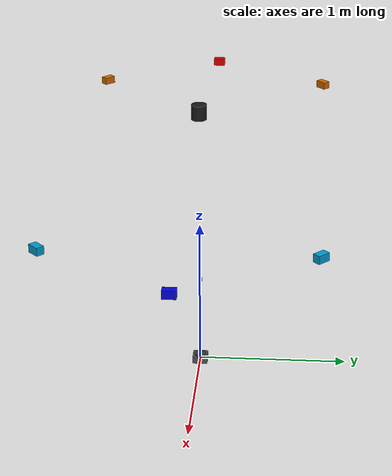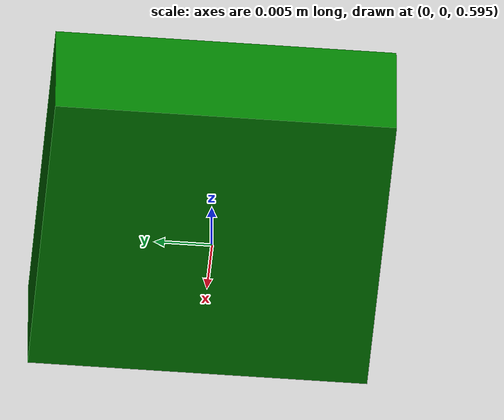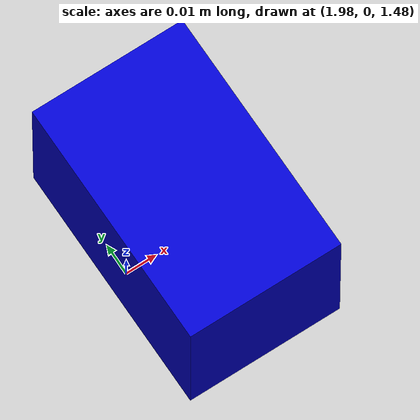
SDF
<?xml version="1.0"?>
<sdf version="1.9">
  <model name="occworld_sensor_rig">
    <static>false</static>

    <!-- BASE LINK - Attachment point for all sensors                       -->
    <link name="sensor_base">
      <inertial>
        <mass>0.5</mass>
        <inertia>
          <ixx>0.01</ixx>
          <iyy>0.01</iyy>
          <izz>0.01</izz>
          <ixy>0</ixy>
          <ixz>0</ixz>
          <iyz>0</iyz>
        </inertia>
      </inertial>
      <visual name="sensor_base_visual">
        <geometry>
          <box><size>0.1 0.1 0.05</size></box>
        </geometry>
        <material>
          <ambient>0.3 0.3 0.3 1</ambient>
        </material>
      </visual>
    </link>

    <!-- CAMERA ARRAY - 6 Surround-View Cameras for BEVFusion               -->
    <!-- Resolution: 1600x900, FOV: 70deg, Rate: 10Hz                       -->
    <!-- Intrinsics: fx=fy=1142.5, cx=800, cy=450                          -->

    <!-- FRONT CAMERA (CAM_FRONT) - 0 degrees yaw -->
    <link name="camera_front_link">
      <pose relative_to="sensor_base">2.0 0 1.5 0 0 0</pose>
      <inertial>
        <mass>0.05</mass>
        <inertia>
          <ixx>0.0001</ixx><iyy>0.0001</iyy><izz>0.0001</izz>
        </inertia>
      </inertial>
      <visual name="camera_visual">
        <geometry><box><size>0.05 0.08 0.05</size></box></geometry>
        <material><ambient>0 0 0.8 1</ambient></material>
      </visual>
      <sensor name="camera_front" type="camera">
        <always_on>1</always_on>
        <update_rate>10</update_rate>
        <visualize>true</visualize>
        <topic>camera/front/image</topic>
        <gz_frame_id>camera_front_link</gz_frame_id>
        <camera>
          <horizontal_fov>1.2217</horizontal_fov>  <!-- 70 degrees -->
          <image>
            <width>1600</width>
            <height>900</height>
            <format>R8G8B8</format>
          </image>
          <clip>
            <near>0.1</near>
            <far>300</far>
          </clip>
          <lens>
            <intrinsics>
              <fx>1142.5</fx>
              <fy>1142.5</fy>
              <cx>800</cx>
              <cy>450</cy>
              <s>0</s>
            </intrinsics>
          </lens>
          <distortion>
            <k1>0.0</k1>
            <k2>0.0</k2>
            <k3>0.0</k3>
            <p1>0.0</p1>
            <p2>0.0</p2>
          </distortion>
          <noise>
            <type>gaussian</type>
            <mean>0</mean>
            <stddev>0.007</stddev>
          </noise>
        </camera>
      </sensor>
    </link>
    <joint name="camera_front_joint" type="fixed">
      <parent>sensor_base</parent>
      <child>camera_front_link</child>
    </joint>

    <!-- FRONT-LEFT CAMERA (CAM_FRONT_LEFT) - +45 degrees yaw (0.7854 rad) -->
    <link name="camera_front_left_link">
      <pose relative_to="sensor_base">1.5 0.8 1.5 0 0 0.7854</pose>
      <inertial>
        <mass>0.05</mass>
        <inertia>
          <ixx>0.0001</ixx><iyy>0.0001</iyy><izz>0.0001</izz>
        </inertia>
      </inertial>
      <visual name="camera_visual">
        <geometry><box><size>0.05 0.08 0.05</size></box></geometry>
        <material><ambient>0 0.6 0.8 1</ambient></material>
      </visual>
      <sensor name="camera_front_left" type="camera">
        <always_on>1</always_on>
        <update_rate>10</update_rate>
        <visualize>false</visualize>
        <topic>camera/front_left/image</topic>
        <gz_frame_id>camera_front_left_link</gz_frame_id>
        <camera>
          <horizontal_fov>1.2217</horizontal_fov>
          <image>
            <width>1600</width>
            <height>900</height>
            <format>R8G8B8</format>
          </image>
          <clip>
            <near>0.1</near>
            <far>300</far>
          </clip>
          <lens>
            <intrinsics>
              <fx>1142.5</fx>
              <fy>1142.5</fy>
              <cx>800</cx>
              <cy>450</cy>
              <s>0</s>
            </intrinsics>
          </lens>
          <noise>
            <type>gaussian</type>
            <mean>0</mean>
            <stddev>0.007</stddev>
          </noise>
        </camera>
      </sensor>
    </link>
    <joint name="camera_front_left_joint" type="fixed">
      <parent>sensor_base</parent>
      <child>camera_front_left_link</child>
    </joint>

    <!-- FRONT-RIGHT CAMERA (CAM_FRONT_RIGHT) - -45 degrees yaw (-0.7854 rad) -->
    <link name="camera_front_right_link">
      <pose relative_to="sensor_base">1.5 -0.8 1.5 0 0 -0.7854</pose>
      <inertial>
        <mass>0.05</mass>
        <inertia>
          <ixx>0.0001</ixx><iyy>0.0001</iyy><izz>0.0001</izz>
        </inertia>
      </inertial>
      <visual name="camera_visual">
        <geometry><box><size>0.05 0.08 0.05</size></box></geometry>
        <material><ambient>0 0.6 0.8 1</ambient></material>
      </visual>
      <sensor name="camera_front_right" type="camera">
        <always_on>1</always_on>
        <update_rate>10</update_rate>
        <visualize>false</visualize>
        <topic>camera/front_right/image</topic>
        <gz_frame_id>camera_front_right_link</gz_frame_id>
        <camera>
          <horizontal_fov>1.2217</horizontal_fov>
          <image>
            <width>1600</width>
            <height>900</height>
            <format>R8G8B8</format>
          </image>
          <clip>
            <near>0.1</near>
            <far>300</far>
          </clip>
          <lens>
            <intrinsics>
              <fx>1142.5</fx>
              <fy>1142.5</fy>
              <cx>800</cx>
              <cy>450</cy>
              <s>0</s>
            </intrinsics>
          </lens>
          <noise>
            <type>gaussian</type>
            <mean>0</mean>
            <stddev>0.007</stddev>
          </noise>
        </camera>
      </sensor>
    </link>
    <joint name="camera_front_right_joint" type="fixed">
      <parent>sensor_base</parent>
      <child>camera_front_right_link</child>
    </joint>

    <!-- BACK CAMERA (CAM_BACK) - 180 degrees yaw (3.1416 rad) -->
    <link name="camera_back_link">
      <pose relative_to="sensor_base">-2.0 0 1.5 0 0 3.1416</pose>
      <inertial>
        <mass>0.05</mass>
        <inertia>
          <ixx>0.0001</ixx><iyy>0.0001</iyy><izz>0.0001</izz>
        </inertia>
      </inertial>
      <visual name="camera_visual">
        <geometry><box><size>0.05 0.08 0.05</size></box></geometry>
        <material><ambient>0.8 0 0 1</ambient></material>
      </visual>
      <sensor name="camera_back" type="camera">
        <always_on>1</always_on>
        <update_rate>10</update_rate>
        <visualize>false</visualize>
        <topic>camera/back/image</topic>
        <gz_frame_id>camera_back_link</gz_frame_id>
        <camera>
          <horizontal_fov>1.2217</horizontal_fov>
          <image>
            <width>1600</width>
            <height>900</height>
            <format>R8G8B8</format>
          </image>
          <clip>
            <near>0.1</near>
            <far>300</far>
          </clip>
          <lens>
            <intrinsics>
              <fx>1142.5</fx>
              <fy>1142.5</fy>
              <cx>800</cx>
              <cy>450</cy>
              <s>0</s>
            </intrinsics>
          </lens>
          <noise>
            <type>gaussian</type>
            <mean>0</mean>
            <stddev>0.007</stddev>
          </noise>
        </camera>
      </sensor>
    </link>
    <joint name="camera_back_joint" type="fixed">
      <parent>sensor_base</parent>
      <child>camera_back_link</child>
    </joint>

    <!-- BACK-LEFT CAMERA (CAM_BACK_LEFT) - +135 degrees yaw (2.3562 rad) -->
    <link name="camera_back_left_link">
      <pose relative_to="sensor_base">-1.5 0.8 1.5 0 0 2.3562</pose>
      <inertial>
        <mass>0.05</mass>
        <inertia>
          <ixx>0.0001</ixx><iyy>0.0001</iyy><izz>0.0001</izz>
        </inertia>
      </inertial>
      <visual name="camera_visual">
        <geometry><box><size>0.05 0.08 0.05</size></box></geometry>
        <material><ambient>0.8 0.4 0 1</ambient></material>
      </visual>
      <sensor name="camera_back_left" type="camera">
        <always_on>1</always_on>
        <update_rate>10</update_rate>
        <visualize>false</visualize>
        <topic>camera/back_left/image</topic>
        <gz_frame_id>camera_back_left_link</gz_frame_id>
        <camera>
          <horizontal_fov>1.2217</horizontal_fov>
          <image>
            <width>1600</width>
            <height>900</height>
            <format>R8G8B8</format>
          </image>
          <clip>
            <near>0.1</near>
            <far>300</far>
          </clip>
          <lens>
            <intrinsics>
              <fx>1142.5</fx>
              <fy>1142.5</fy>
              <cx>800</cx>
              <cy>450</cy>
              <s>0</s>
            </intrinsics>
          </lens>
          <noise>
            <type>gaussian</type>
            <mean>0</mean>
            <stddev>0.007</stddev>
          </noise>
        </camera>
      </sensor>
    </link>
    <joint name="camera_back_left_joint" type="fixed">
      <parent>sensor_base</parent>
      <child>camera_back_left_link</child>
    </joint>

    <!-- BACK-RIGHT CAMERA (CAM_BACK_RIGHT) - -135 degrees yaw (-2.3562 rad) -->
    <link name="camera_back_right_link">
      <pose relative_to="sensor_base">-1.5 -0.8 1.5 0 0 -2.3562</pose>
      <inertial>
        <mass>0.05</mass>
        <inertia>
          <ixx>0.0001</ixx><iyy>0.0001</iyy><izz>0.0001</izz>
        </inertia>
      </inertial>
      <visual name="camera_visual">
        <geometry><box><size>0.05 0.08 0.05</size></box></geometry>
        <material><ambient>0.8 0.4 0 1</ambient></material>
      </visual>
      <sensor name="camera_back_right" type="camera">
        <always_on>1</always_on>
        <update_rate>10</update_rate>
        <visualize>false</visualize>
        <topic>camera/back_right/image</topic>
        <gz_frame_id>camera_back_right_link</gz_frame_id>
        <camera>
          <horizontal_fov>1.2217</horizontal_fov>
          <image>
            <width>1600</width>
            <height>900</height>
            <format>R8G8B8</format>
          </image>
          <clip>
            <near>0.1</near>
            <far>300</far>
          </clip>
          <lens>
            <intrinsics>
              <fx>1142.5</fx>
              <fy>1142.5</fy>
              <cx>800</cx>
              <cy>450</cy>
              <s>0</s>
            </intrinsics>
          </lens>
          <noise>
            <type>gaussian</type>
            <mean>0</mean>
            <stddev>0.007</stddev>
          </noise>
        </camera>
      </sensor>
    </link>
    <joint name="camera_back_right_joint" type="fixed">
      <parent>sensor_base</parent>
      <child>camera_back_right_link</child>
    </joint>

    <!-- GROUND ROBOT GPU LiDAR                                             -->
    <!-- High resolution: 1800 horizontal x 64 vertical beams               -->
    <!-- Range: 0.5m - 120m, Vertical FOV: -25 to +15 degrees              -->
    <!-- Gaussian noise: stddev 0.02m (typical Velodyne/Ouster spec)        -->
    <link name="lidar_ground_link">
      <pose relative_to="sensor_base">0 0 1.8 0 0 0</pose>
      <inertial>
        <mass>0.8</mass>
        <inertia>
          <ixx>0.005</ixx><iyy>0.005</iyy><izz>0.005</izz>
        </inertia>
      </inertial>
      <visual name="lidar_visual">
        <geometry><cylinder><radius>0.05</radius><length>0.1</length></cylinder></geometry>
        <material><ambient>0.1 0.1 0.1 1</ambient></material>
      </visual>
      <sensor name="gpu_lidar_ground" type="gpu_lidar">
        <always_on>true</always_on>
        <update_rate>10</update_rate>
        <visualize>true</visualize>
        <topic>lidar/ground/points</topic>
        <gz_frame_id>lidar_ground_link</gz_frame_id>
        <lidar>
          <scan>
            <horizontal>
              <samples>1800</samples>
              <resolution>1</resolution>
              <min_angle>-3.14159</min_angle>
              <max_angle>3.14159</max_angle>
            </horizontal>
            <vertical>
              <samples>64</samples>
              <resolution>1</resolution>
              <min_angle>-0.4363</min_angle>  <!-- -25 degrees -->
              <max_angle>0.2618</max_angle>   <!-- +15 degrees -->
            </vertical>
          </scan>
          <range>
            <min>0.5</min>
            <max>120</max>
            <resolution>0.01</resolution>
          </range>
          <noise>
            <type>gaussian</type>
            <mean>0</mean>
            <stddev>0.02</stddev>
          </noise>
        </lidar>
      </sensor>
    </link>
    <joint name="lidar_ground_joint" type="fixed">
      <parent>sensor_base</parent>
      <child>lidar_ground_link</child>
    </joint>

    <!-- DRONE GPU LiDAR                                                    -->
    <!-- Optimized for aerial: 1200 horizontal x 32 vertical beams          -->
    <!-- Wide vertical FOV: -45 to +45 degrees for downward/upward view     -->
    <!-- Range: 0.3m - 100m (closer min for low-altitude ops)               -->
    <!-- Gaussian noise: stddev 0.03m (slightly higher for drone vibration) -->
    <link name="lidar_drone_link">
      <pose relative_to="sensor_base">0 0 0 0 0 0</pose>
      <inertial>
        <mass>0.3</mass>
        <inertia>
          <ixx>0.002</ixx><iyy>0.002</iyy><izz>0.002</izz>
        </inertia>
      </inertial>
      <visual name="lidar_visual">
        <geometry><cylinder><radius>0.04</radius><length>0.06</length></cylinder></geometry>
        <material><ambient>0.2 0.2 0.2 1</ambient></material>
      </visual>
      <sensor name="gpu_lidar_drone" type="gpu_lidar">
        <always_on>true</always_on>
        <update_rate>10</update_rate>
        <visualize>true</visualize>
        <topic>lidar/drone/points</topic>
        <gz_frame_id>lidar_drone_link</gz_frame_id>
        <lidar>
          <scan>
            <horizontal>
              <samples>1200</samples>
              <resolution>1</resolution>
              <min_angle>-3.14159</min_angle>
              <max_angle>3.14159</max_angle>
            </horizontal>
            <vertical>
              <samples>32</samples>
              <resolution>1</resolution>
              <min_angle>-0.7854</min_angle>  <!-- -45 degrees (look down) -->
              <max_angle>0.7854</max_angle>   <!-- +45 degrees (look up) -->
            </vertical>
          </scan>
          <range>
            <min>0.3</min>
            <max>100</max>
            <resolution>0.01</resolution>
          </range>
          <noise>
            <type>gaussian</type>
            <mean>0</mean>
            <stddev>0.03</stddev>
          </noise>
        </lidar>
      </sensor>
    </link>
    <joint name="lidar_drone_joint" type="fixed">
      <parent>sensor_base</parent>
      <child>lidar_drone_link</child>
    </joint>

    <!-- IMU SENSOR                                                         -->
    <!-- High-rate: 200Hz for state estimation                              -->
    <!-- Noise modeled after typical MEMS IMU (MPU-6050 class)              -->
    <!-- Angular velocity noise: 0.0003 rad/s (0.017 deg/s)                 -->
    <!-- Linear acceleration noise: 0.01 m/s^2                              -->
    <link name="imu_link">
      <pose relative_to="sensor_base">0 0 0.5 0 0 0</pose>
      <inertial>
        <mass>0.02</mass>
        <inertia>
          <ixx>0.00001</ixx><iyy>0.00001</iyy><izz>0.00001</izz>
        </inertia>
      </inertial>
      <sensor name="imu_sensor" type="imu">
        <always_on>true</always_on>
        <update_rate>200</update_rate>
        <visualize>false</visualize>
        <topic>imu/data</topic>
        <gz_frame_id>imu_link</gz_frame_id>
        <imu>
          <angular_velocity>
            <x>
              <noise type="gaussian">
                <mean>0</mean>
                <stddev>0.0003</stddev>
              </noise>
            </x>
            <y>
              <noise type="gaussian">
                <mean>0</mean>
                <stddev>0.0003</stddev>
              </noise>
            </y>
            <z>
              <noise type="gaussian">
                <mean>0</mean>
                <stddev>0.0003</stddev>
              </noise>
            </z>
          </angular_velocity>
          <linear_acceleration>
            <x>
              <noise type="gaussian">
                <mean>0</mean>
                <stddev>0.01</stddev>
              </noise>
            </x>
            <y>
              <noise type="gaussian">
                <mean>0</mean>
                <stddev>0.01</stddev>
              </noise>
            </y>
            <z>
              <noise type="gaussian">
                <mean>0</mean>
                <stddev>0.01</stddev>
              </noise>
            </z>
          </linear_acceleration>
          <!-- Enable gravity reference -->
          <enable_orientation>true</enable_orientation>
        </imu>
      </sensor>
    </link>
    <joint name="imu_joint" type="fixed">
      <parent>sensor_base</parent>
      <child>imu_link</child>
    </joint>

    <!-- GPS/NavSat SENSOR                                                  -->
    <!-- Rate: 10Hz (typical consumer GPS)                                  -->
    <!-- Position noise: 0.5m horizontal, 1.0m vertical (RTK-like accuracy) -->
    <!-- Velocity noise: 0.05 m/s horizontal, 0.1 m/s vertical              -->
    <link name="gps_link">
      <pose relative_to="sensor_base">0 0 0.6 0 0 0</pose>
      <inertial>
        <mass>0.03</mass>
        <inertia>
          <ixx>0.00001</ixx><iyy>0.00001</iyy><izz>0.00001</izz>
        </inertia>
      </inertial>
      <visual name="gps_visual">
        <geometry><box><size>0.03 0.03 0.01</size></box></geometry>
        <material><ambient>0 0.5 0 1</ambient></material>
      </visual>
      <sensor name="navsat_sensor" type="navsat">
        <always_on>true</always_on>
        <update_rate>10</update_rate>
        <topic>gps/fix</topic>
        <gz_frame_id>gps_link</gz_frame_id>
        <navsat>
          <position_sensing>
            <horizontal>
              <noise type="gaussian">
                <mean>0</mean>
                <stddev>0.5</stddev>  <!-- ~0.5m horizontal error -->
              </noise>
            </horizontal>
            <vertical>
              <noise type="gaussian">
                <mean>0</mean>
                <stddev>1.0</stddev>  <!-- ~1m vertical error -->
              </noise>
            </vertical>
          </position_sensing>
          <velocity_sensing>
            <horizontal>
              <noise type="gaussian">
                <mean>0</mean>
                <stddev>0.05</stddev>
              </noise>
            </horizontal>
            <vertical>
              <noise type="gaussian">
                <mean>0</mean>
                <stddev>0.1</stddev>
              </noise>
            </vertical>
          </velocity_sensing>
        </navsat>
      </sensor>
    </link>
    <joint name="gps_joint" type="fixed">
      <parent>sensor_base</parent>
      <child>gps_link</child>
    </joint>

  </model>
</sdf>
